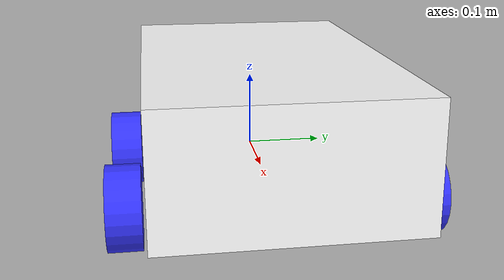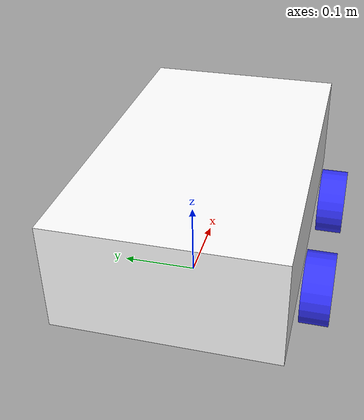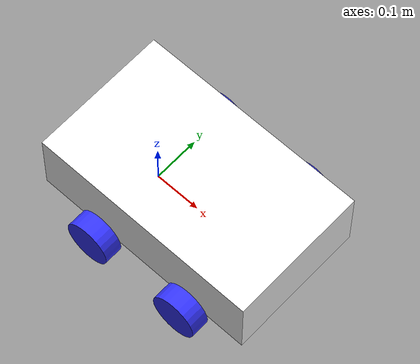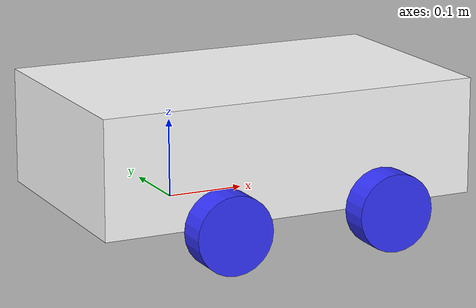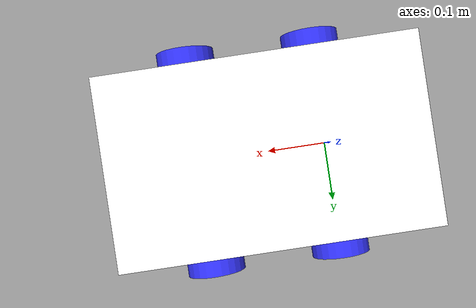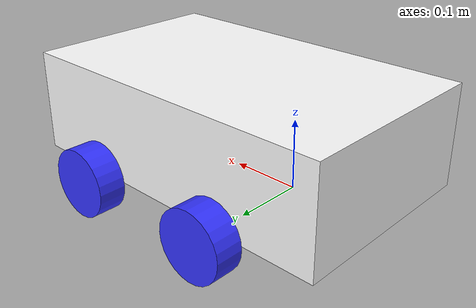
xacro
<?xml version="1.0"?>
<robot xmlns:xacro="http://www.ros.org/wiki/xacro" >

    <xacro:include filename="inertial_macros.xacro"/>

    <material name="white">
        <color rgba="1 1 1 1" />
    </material>

    <material name="orange">
        <color rgba="1 0.3 0.1 1"/>
    </material>

    <material name="blue">
        <color rgba="0.2 0.2 1 1"/>
    </material>

    <material name="black">
        <color rgba="0 0 0 1"/>
    </material>

    <!-- BASE LINK -->

    <link name="base_link">

    </link>

    <!-- CHASSIS LINK -->

    <joint name="chassis_joint" type="fixed">
        <parent link="base_link"/>
        <child link="chassis"/>
        <origin xyz="-0.1 0 0"/>
    </joint>

    <link name="chassis">
        <visual>
            <origin xyz="0.20 0 0.075"/>
            <geometry>
                <box size="0.5 0.3 0.15"/>
            </geometry>
            <material name="white"/>
        </visual>
        <collision>
            <origin xyz="0.20 0 0.075"/>
            <geometry>
                <box size="0.5 0.3 0.15"/>
            </geometry>
        </collision>
        <xacro:inertial_box mass="0.5" x="0.4" y="0.3" z="0.15">
            <origin xyz="0.20 0 0.075" rpy="0 0 0"/>
        </xacro:inertial_box>
    </link>

    <gazebo reference="chassis">
        <material>Gazebo/Black</material>
    </gazebo>

    <!-- LEFT WHEEL LINK -->

    <joint name="left_wheel_joint" type="continuous">
        <parent link="base_link"/>
        <child link="left_wheel"/>
        <origin xyz="0 0.175 0" rpy="-${pi/2} 0 0" />
        <axis xyz="0 0 1"/>
    </joint>

    <link name="left_wheel">
        <visual>
            <geometry>
                <cylinder radius="0.05" length="0.04"/>
            </geometry>
            <material name="blue"/>
        </visual>
        <collision>
            <geometry>
                <cylinder radius="0.05" length="0.04"/>
            </geometry>
        </collision>
        <xacro:inertial_cylinder mass="0.1" length="0.04" radius="0.05">
            <origin xyz="0 0 0" rpy="0 0 0"/>
        </xacro:inertial_cylinder>
    </link>

    <gazebo reference="left_wheel">
        <material>Gazebo/Blue</material>
    </gazebo>

    <!-- RIGHT WHEEL LINK -->

    <joint name="right_wheel_joint" type="continuous">
        <parent link="base_link"/>
        <child link="right_wheel"/>
        <origin xyz="0 -0.175 0" rpy="${pi/2} 0 0" />
        <axis xyz="0 0 -1"/>
    </joint>

    <link name="right_wheel">
        <visual>
            <geometry>
                <cylinder radius="0.05" length="0.04"/>
            </geometry>
            <material name="blue"/>
        </visual>
        <collision>
            <geometry>
                <cylinder radius="0.05" length="0.04"/>
            </geometry>
        </collision>
        <xacro:inertial_cylinder mass="0.1" length="0.04" radius="0.05">
            <origin xyz="0 0 0" rpy="0 0 0"/>
        </xacro:inertial_cylinder>
    </link>

    <gazebo reference="right_wheel">
        <material>Gazebo/Blue</material>
    </gazebo>

    <!-- TWO WHEELS LINK -->

    <joint name="front_left_wheel_joint" type="continuous">
        <parent link="base_link"/>
        <child link="front_left_wheel"/>
        <origin xyz="0.22 0.175 0" rpy="-${pi/2} 0 0" />
        <axis xyz="0 0 1"/>
    </joint>

    <link name="front_left_wheel">
        <visual>
            <geometry>
                <cylinder radius="0.05" length="0.04"/>
            </geometry>
            <material name="blue"/>
        </visual>
        <collision>
            <geometry>
                <cylinder radius="0.05" length="0.04"/>
            </geometry>
        </collision>
        <xacro:inertial_cylinder mass="0.1" length="0.04" radius="0.05">
            <origin xyz="0 0 0" rpy="0 0 0"/>
        </xacro:inertial_cylinder>
    </link>

    <gazebo reference="front_left_wheel">
        <material>Gazebo/Blue</material>
    </gazebo>

    <joint name="front_right_wheel_joint" type="continuous">
        <parent link="base_link"/>
        <child link="front_right_wheel"/>
        <origin xyz="0.22 -0.175 0" rpy="${pi/2} 0 0" />
        <axis xyz="0 0 -1"/>
    </joint>

    <link name="front_right_wheel">
        <visual>
            <geometry>
                <cylinder radius="0.05" length="0.04"/>
            </geometry>
            <material name="blue"/>
        </visual>
        <collision>
            <geometry>
                <cylinder radius="0.05" length="0.04"/>
            </geometry>
        </collision>
        <xacro:inertial_cylinder mass="0.1" length="0.04" radius="0.05">
            <origin xyz="0 0 0" rpy="0 0 0"/>
        </xacro:inertial_cylinder>
    </link>

    <gazebo reference="front_right_wheel">
        <material>Gazebo/Blue</material>
    </gazebo>

</robot>
